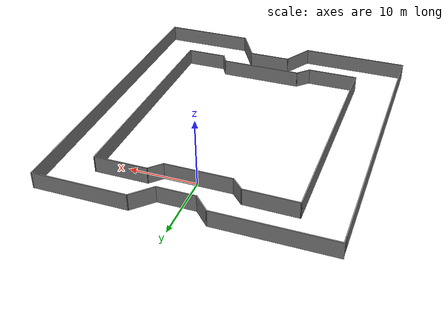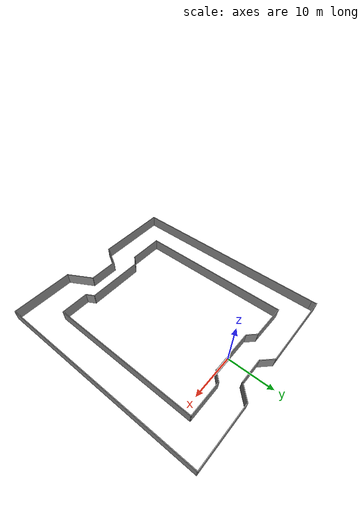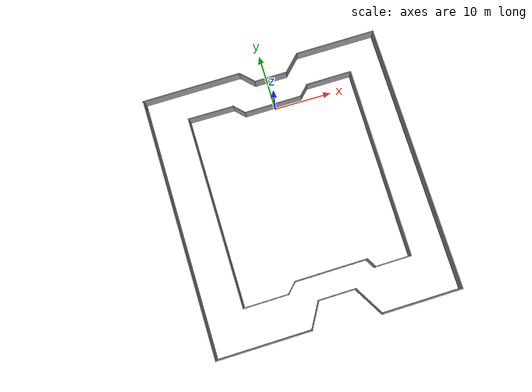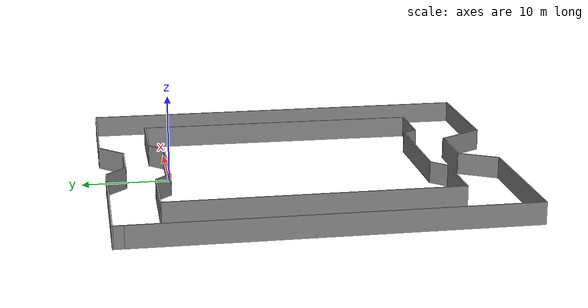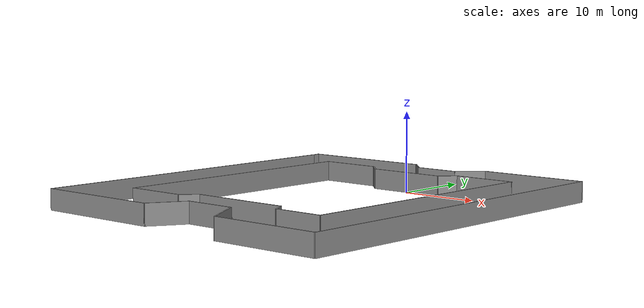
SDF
<?xml version='1.0'?>
<sdf version='1.7'>
  <model name='Track_basic'>
    <pose>-0.607311 -15.3829 0 0 -0 0</pose>
    <link name='Wall_10'>
      <collision name='Wall_10_Collision'>
        <geometry>
          <box>
            <size>8 0.15 2.5</size>
          </box>
        </geometry>
        <pose>0 0 1.25 0 -0 0</pose>
      </collision>
      <visual name='Wall_10_Visual'>
        <pose>0 0 1.25 0 -0 0</pose>
        <geometry>
          <box>
            <size>8 0.15 2.5</size>
          </box>
        </geometry>
        <material>
          <script>
            <uri>file://media/materials/scripts/gazebo.material</uri>
            <name>Gazebo/Grey</name>
          </script>
          <ambient>1 1 1 1</ambient>
        </material>
        <meta>
          <layer>0</layer>
        </meta>
      </visual>
      <pose>10.8193 17.3038 0 0 -0 0</pose>
    </link>
    <link name='Wall_108'>
      <collision name='Wall_108_Collision'>
        <geometry>
          <box>
            <size>44 0.15 2.5</size>
          </box>
        </geometry>
        <pose>0 0 1.25 0 -0 0</pose>
      </collision>
      <visual name='Wall_108_Visual'>
        <pose>0 0 1.25 0 -0 0</pose>
        <geometry>
          <box>
            <size>44 0.15 2.5</size>
          </box>
        </geometry>
        <material>
          <script>
            <uri>file://media/materials/scripts/gazebo.material</uri>
            <name>Gazebo/Grey</name>
          </script>
          <ambient>1 1 1 1</ambient>
        </material>
        <meta>
          <layer>0</layer>
        </meta>
      </visual>
      <pose>-20.6678 -0.385782 0 0 -0 -1.5708</pose>
    </link>
    <link name='Wall_109'>
      <collision name='Wall_109_Collision'>
        <geometry>
          <box>
            <size>16.25 0.15 2.5</size>
          </box>
        </geometry>
        <pose>0 0 1.25 0 -0 0</pose>
      </collision>
      <visual name='Wall_109_Visual'>
        <pose>0 0 1.25 0 -0 0</pose>
        <geometry>
          <box>
            <size>16.25 0.15 2.5</size>
          </box>
        </geometry>
        <material>
          <script>
            <uri>file://media/materials/scripts/gazebo.material</uri>
            <name>Gazebo/Grey</name>
          </script>
          <ambient>1 1 1 1</ambient>
        </material>
        <meta>
          <layer>0</layer>
        </meta>
      </visual>
      <pose>-12.6178 -22.3108 0 0 -0 0</pose>
    </link>
    <link name='Wall_110'>
      <collision name='Wall_110_Collision'>
        <geometry>
          <box>
            <size>5 0.15 2.5</size>
          </box>
        </geometry>
        <pose>0 0 1.25 0 -0 0</pose>
      </collision>
      <visual name='Wall_110_Visual'>
        <pose>0 0 1.25 0 -0 0</pose>
        <geometry>
          <box>
            <size>5 0.15 2.5</size>
          </box>
        </geometry>
        <material>
          <script>
            <uri>file://media/materials/scripts/gazebo.material</uri>
            <name>Gazebo/Grey</name>
          </script>
          <ambient>1 1 1 1</ambient>
        </material>
        <meta>
          <layer>0</layer>
        </meta>
      </visual>
      <pose>-3.3553 -20.2107 0 0 -0 1.0472</pose>
    </link>
    <link name='Wall_111'>
      <collision name='Wall_111_Collision'>
        <geometry>
          <box>
            <size>6.5 0.15 2.5</size>
          </box>
        </geometry>
        <pose>0 0 1.25 0 -0 0</pose>
      </collision>
      <visual name='Wall_111_Visual'>
        <pose>0 0 1.25 0 -0 0</pose>
        <geometry>
          <box>
            <size>6.5 0.15 2.5</size>
          </box>
        </geometry>
        <material>
          <script>
            <uri>file://media/materials/scripts/gazebo.material</uri>
            <name>Gazebo/Grey</name>
          </script>
          <ambient>1 1 1 1</ambient>
        </material>
        <meta>
          <layer>0</layer>
        </meta>
      </visual>
      <pose>1.03219 -18.1106 0 0 -0 0</pose>
    </link>
    <link name='Wall_112'>
      <collision name='Wall_112_Collision'>
        <geometry>
          <box>
            <size>6 0.15 2.5</size>
          </box>
        </geometry>
        <pose>0 0 1.25 0 -0 0</pose>
      </collision>
      <visual name='Wall_112_Visual'>
        <pose>0 0 1.25 0 -0 0</pose>
        <geometry>
          <box>
            <size>6 0.15 2.5</size>
          </box>
        </geometry>
        <material>
          <script>
            <uri>file://media/materials/scripts/gazebo.material</uri>
            <name>Gazebo/Grey</name>
          </script>
          <ambient>1 1 1 1</ambient>
        </material>
        <meta>
          <layer>0</layer>
        </meta>
      </visual>
      <pose>5.66969 -20.6437 0 0 -0 -1.0472</pose>
    </link>
    <link name='Wall_113'>
      <collision name='Wall_113_Collision'>
        <geometry>
          <box>
            <size>13.75 0.15 2.5</size>
          </box>
        </geometry>
        <pose>0 0 1.25 0 -0 0</pose>
      </collision>
      <visual name='Wall_113_Visual'>
        <pose>0 0 1.25 0 -0 0</pose>
        <geometry>
          <box>
            <size>13.75 0.15 2.5</size>
          </box>
        </geometry>
        <material>
          <script>
            <uri>file://media/materials/scripts/gazebo.material</uri>
            <name>Gazebo/Grey</name>
          </script>
          <ambient>1 1 1 1</ambient>
        </material>
        <meta>
          <layer>0</layer>
        </meta>
      </visual>
      <pose>13.9322 -23.1768 0 0 -0 0</pose>
    </link>
    <link name='Wall_114'>
      <collision name='Wall_114_Collision'>
        <geometry>
          <box>
            <size>46.5 0.15 2.5</size>
          </box>
        </geometry>
        <pose>0 0 1.25 0 -0 0</pose>
      </collision>
      <visual name='Wall_114_Visual'>
        <pose>0 0 1.25 0 -0 0</pose>
        <geometry>
          <box>
            <size>46.5 0.15 2.5</size>
          </box>
        </geometry>
        <material>
          <script>
            <uri>file://media/materials/scripts/gazebo.material</uri>
            <name>Gazebo/Grey</name>
          </script>
          <ambient>1 1 1 1</ambient>
        </material>
        <meta>
          <layer>0</layer>
        </meta>
      </visual>
      <pose>20.7322 -0.001807 0 0 -0 1.5708</pose>
    </link>
    <link name='Wall_115'>
      <collision name='Wall_115_Collision'>
        <geometry>
          <box>
            <size>14 0.15 2.5</size>
          </box>
        </geometry>
        <pose>0 0 1.25 0 -0 0</pose>
      </collision>
      <visual name='Wall_115_Visual'>
        <pose>0 0 1.25 0 -0 0</pose>
        <geometry>
          <box>
            <size>14 0.15 2.5</size>
          </box>
        </geometry>
        <material>
          <script>
            <uri>file://media/materials/scripts/gazebo.material</uri>
            <name>Gazebo/Grey</name>
          </script>
          <ambient>1 1 1 1</ambient>
        </material>
        <meta>
          <layer>0</layer>
        </meta>
      </visual>
      <pose>13.8072 23.1732 0 0 -0 3.14159</pose>
    </link>
    <link name='Wall_116'>
      <collision name='Wall_116_Collision'>
        <geometry>
          <box>
            <size>4 0.15 2.5</size>
          </box>
        </geometry>
        <pose>0 0 1.25 0 -0 0</pose>
      </collision>
      <visual name='Wall_116_Visual'>
        <pose>0 0 1.25 0 -0 0</pose>
        <geometry>
          <box>
            <size>4 0.15 2.5</size>
          </box>
        </geometry>
        <material>
          <script>
            <uri>file://media/materials/scripts/gazebo.material</uri>
            <name>Gazebo/Grey</name>
          </script>
          <ambient>1 1 1 1</ambient>
        </material>
        <meta>
          <layer>0</layer>
        </meta>
      </visual>
      <pose>5.52102 21.812 0 0 -0 -2.35619</pose>
    </link>
    <link name='Wall_117'>
      <collision name='Wall_117_Collision'>
        <geometry>
          <box>
            <size>5.75 0.15 2.5</size>
          </box>
        </geometry>
        <pose>0 0 1.25 0 -0 0</pose>
      </collision>
      <visual name='Wall_117_Visual'>
        <pose>0 0 1.25 0 -0 0</pose>
        <geometry>
          <box>
            <size>5.75 0.15 2.5</size>
          </box>
        </geometry>
        <material>
          <script>
            <uri>file://media/materials/scripts/gazebo.material</uri>
            <name>Gazebo/Grey</name>
          </script>
          <ambient>1 1 1 1</ambient>
        </material>
        <meta>
          <layer>0</layer>
        </meta>
      </visual>
      <pose>1.35983 20.4508 0 0 -0 3.14159</pose>
    </link>
    <link name='Wall_118'>
      <collision name='Wall_118_Collision'>
        <geometry>
          <box>
            <size>3.25 0.15 2.5</size>
          </box>
        </geometry>
        <pose>0 0 1.25 0 -0 0</pose>
      </collision>
      <visual name='Wall_118_Visual'>
        <pose>0 0 1.25 0 -0 0</pose>
        <geometry>
          <box>
            <size>3.25 0.15 2.5</size>
          </box>
        </geometry>
        <material>
          <script>
            <uri>file://media/materials/scripts/gazebo.material</uri>
            <name>Gazebo/Grey</name>
          </script>
          <ambient>1 1 1 1</ambient>
        </material>
        <meta>
          <layer>0</layer>
        </meta>
      </visual>
      <pose>-2.53618 21.5468 0 0 -0 2.35619</pose>
    </link>
    <link name='Wall_119'>
      <collision name='Wall_119_Collision'>
        <geometry>
          <box>
            <size>17.25 0.15 2.5</size>
          </box>
        </geometry>
        <pose>0 0 1.25 0 -0 0</pose>
      </collision>
      <visual name='Wall_119_Visual'>
        <pose>0 0 1.25 0 -0 0</pose>
        <geometry>
          <box>
            <size>17.25 0.15 2.5</size>
          </box>
        </geometry>
        <material>
          <script>
            <uri>file://media/materials/scripts/gazebo.material</uri>
            <name>Gazebo/Grey</name>
          </script>
          <ambient>1 1 1 1</ambient>
        </material>
        <meta>
          <layer>0</layer>
        </meta>
      </visual>
      <pose>-12.1822 22.6429 0 0 -0 3.14159</pose>
    </link>
    <link name='Wall_122'>
      <collision name='Wall_122_Collision'>
        <geometry>
          <box>
            <size>1.25 0.15 2.5</size>
          </box>
        </geometry>
        <pose>0 0 1.25 0 -0 0</pose>
      </collision>
      <visual name='Wall_122_Visual'>
        <pose>0 0 1.25 0 -0 0</pose>
        <geometry>
          <box>
            <size>1.25 0.15 2.5</size>
          </box>
        </geometry>
        <material>
          <script>
            <uri>file://media/materials/scripts/gazebo.material</uri>
            <name>Gazebo/Grey</name>
          </script>
          <ambient>1 1 1 1</ambient>
        </material>
        <meta>
          <layer>0</layer>
        </meta>
      </visual>
      <pose>-20.6678 22.0892 0 0 -0 1.5708</pose>
    </link>
    <link name='Wall_14'>
      <collision name='Wall_14_Collision'>
        <geometry>
          <box>
            <size>33.25 0.15 2.5</size>
          </box>
        </geometry>
        <pose>0 0 1.25 0 -0 0</pose>
      </collision>
      <visual name='Wall_14_Visual'>
        <pose>0 0 1.25 0 -0 0</pose>
        <geometry>
          <box>
            <size>33.25 0.15 2.5</size>
          </box>
        </geometry>
        <material>
          <script>
            <uri>file://media/materials/scripts/gazebo.material</uri>
            <name>Gazebo/Grey</name>
          </script>
          <ambient>1 1 1 1</ambient>
        </material>
        <meta>
          <layer>0</layer>
        </meta>
      </visual>
      <pose>-14.1597 0.845605 0 0 -0 -1.5708</pose>
    </link>
    <link name='Wall_16'>
      <collision name='Wall_16_Collision'>
        <geometry>
          <box>
            <size>7.75 0.15 2.5</size>
          </box>
        </geometry>
        <pose>0 0 1.25 0 -0 0</pose>
      </collision>
      <visual name='Wall_16_Visual'>
        <pose>0 0 1.25 0 -0 0</pose>
        <geometry>
          <box>
            <size>7.75 0.15 2.5</size>
          </box>
        </geometry>
        <material>
          <script>
            <uri>file://media/materials/scripts/gazebo.material</uri>
            <name>Gazebo/Grey</name>
          </script>
          <ambient>1 1 1 1</ambient>
        </material>
        <meta>
          <layer>0</layer>
        </meta>
      </visual>
      <pose>-10.3597 -15.7044 0 0 -0 0</pose>
    </link>
    <link name='Wall_17'>
      <collision name='Wall_17_Collision'>
        <geometry>
          <box>
            <size>2.5 0.15 2.5</size>
          </box>
        </geometry>
        <pose>0 0 1.25 0 -0 0</pose>
      </collision>
      <visual name='Wall_17_Visual'>
        <pose>0 0 1.25 0 -0 0</pose>
        <geometry>
          <box>
            <size>2.5 0.15 2.5</size>
          </box>
        </geometry>
        <material>
          <script>
            <uri>file://media/materials/scripts/gazebo.material</uri>
            <name>Gazebo/Grey</name>
          </script>
          <ambient>1 1 1 1</ambient>
        </material>
        <meta>
          <layer>0</layer>
        </meta>
      </visual>
      <pose>-5.72884 -14.8735 0 0 -0 0.785398</pose>
    </link>
    <link name='Wall_18'>
      <collision name='Wall_18_Collision'>
        <geometry>
          <box>
            <size>12.5 0.15 2.5</size>
          </box>
        </geometry>
        <pose>0 0 1.25 0 -0 0</pose>
      </collision>
      <visual name='Wall_18_Visual'>
        <pose>0 0 1.25 0 -0 0</pose>
        <geometry>
          <box>
            <size>12.5 0.15 2.5</size>
          </box>
        </geometry>
        <material>
          <script>
            <uri>file://media/materials/scripts/gazebo.material</uri>
            <name>Gazebo/Grey</name>
          </script>
          <ambient>1 1 1 1</ambient>
        </material>
        <meta>
          <layer>0</layer>
        </meta>
      </visual>
      <pose>1.27701 -14.0427 0 0 -0 0</pose>
    </link>
    <link name='Wall_19'>
      <collision name='Wall_19_Collision'>
        <geometry>
          <box>
            <size>2 0.15 2.5</size>
          </box>
        </geometry>
        <pose>0 0 1.25 0 -0 0</pose>
      </collision>
      <visual name='Wall_19_Visual'>
        <pose>0 0 1.25 0 -0 0</pose>
        <geometry>
          <box>
            <size>2 0.15 2.5</size>
          </box>
        </geometry>
        <material>
          <script>
            <uri>file://media/materials/scripts/gazebo.material</uri>
            <name>Gazebo/Grey</name>
          </script>
          <ambient>1 1 1 1</ambient>
        </material>
        <meta>
          <layer>0</layer>
        </meta>
      </visual>
      <pose>7.91451 -14.8438 0 0 -0 -1.0472</pose>
    </link>
    <link name='Wall_20'>
      <collision name='Wall_20_Collision'>
        <geometry>
          <box>
            <size>6.25 0.15 2.5</size>
          </box>
        </geometry>
        <pose>0 0 1.25 0 -0 0</pose>
      </collision>
      <visual name='Wall_20_Visual'>
        <pose>0 0 1.25 0 -0 0</pose>
        <geometry>
          <box>
            <size>6.25 0.15 2.5</size>
          </box>
        </geometry>
        <material>
          <script>
            <uri>file://media/materials/scripts/gazebo.material</uri>
            <name>Gazebo/Grey</name>
          </script>
          <ambient>1 1 1 1</ambient>
        </material>
        <meta>
          <layer>0</layer>
        </meta>
      </visual>
      <pose>11.427 -15.6448 0 0 -0 0</pose>
    </link>
    <link name='Wall_21'>
      <collision name='Wall_21_Collision'>
        <geometry>
          <box>
            <size>33.0998 0.15 2.5</size>
          </box>
        </geometry>
        <pose>0 0 1.25 0 -0 0</pose>
      </collision>
      <visual name='Wall_21_Visual'>
        <pose>0 0 1.25 0 -0 0</pose>
        <geometry>
          <box>
            <size>33.0998 0.15 2.5</size>
          </box>
        </geometry>
        <material>
          <script>
            <uri>file://media/materials/scripts/gazebo.material</uri>
            <name>Gazebo/Grey</name>
          </script>
          <ambient>1 1 1 1</ambient>
        </material>
        <meta>
          <layer>0</layer>
        </meta>
      </visual>
      <pose>14.6107 0.829496 0 0 -0 1.56268</pose>
    </link>
    <link name='Wall_6'>
      <collision name='Wall_6_Collision'>
        <geometry>
          <box>
            <size>8.03083 0.15 2.5</size>
          </box>
        </geometry>
        <pose>0 0 1.25 0 -0 0</pose>
      </collision>
      <visual name='Wall_6_Visual'>
        <pose>0 0 1.25 0 -0 0</pose>
        <geometry>
          <box>
            <size>8.03083 0.15 2.5</size>
          </box>
        </geometry>
        <material>
          <script>
            <uri>file://media/materials/scripts/gazebo.material</uri>
            <name>Gazebo/Grey</name>
          </script>
          <ambient>1 1 1 1</ambient>
        </material>
        <meta>
          <layer>0</layer>
        </meta>
      </visual>
      <pose>-10.2194 17.3497 0 0 -0 -0.011645</pose>
    </link>
    <link name='Wall_7'>
      <collision name='Wall_7_Collision'>
        <geometry>
          <box>
            <size>2.5 0.15 2.5</size>
          </box>
        </geometry>
        <pose>0 0 1.25 0 -0 0</pose>
      </collision>
      <visual name='Wall_7_Visual'>
        <pose>0 0 1.25 0 -0 0</pose>
        <geometry>
          <box>
            <size>2.5 0.15 2.5</size>
          </box>
        </geometry>
        <material>
          <script>
            <uri>file://media/materials/scripts/gazebo.material</uri>
            <name>Gazebo/Grey</name>
          </script>
          <ambient>1 1 1 1</ambient>
        </material>
        <meta>
          <layer>0</layer>
        </meta>
      </visual>
      <pose>-5.44825 16.473 0 0 -0 -0.785398</pose>
    </link>
    <link name='Wall_8'>
      <collision name='Wall_8_Collision'>
        <geometry>
          <box>
            <size>10 0.15 2.5</size>
          </box>
        </geometry>
        <pose>0 0 1.25 0 -0 0</pose>
      </collision>
      <visual name='Wall_8_Visual'>
        <pose>0 0 1.25 0 -0 0</pose>
        <geometry>
          <box>
            <size>10 0.15 2.5</size>
          </box>
        </geometry>
        <material>
          <script>
            <uri>file://media/materials/scripts/gazebo.material</uri>
            <name>Gazebo/Grey</name>
          </script>
          <ambient>1 1 1 1</ambient>
        </material>
        <meta>
          <layer>0</layer>
        </meta>
      </visual>
      <pose>0.307601 15.6421 0 0 -0 0</pose>
    </link>
    <link name='Wall_9'>
      <collision name='Wall_9_Collision'>
        <geometry>
          <box>
            <size>2.5 0.15 2.5</size>
          </box>
        </geometry>
        <pose>0 0 1.25 0 -0 0</pose>
      </collision>
      <visual name='Wall_9_Visual'>
        <pose>0 0 1.25 0 -0 0</pose>
        <geometry>
          <box>
            <size>2.5 0.15 2.5</size>
          </box>
        </geometry>
        <material>
          <script>
            <uri>file://media/materials/scripts/gazebo.material</uri>
            <name>Gazebo/Grey</name>
          </script>
          <ambient>1 1 1 1</ambient>
        </material>
        <meta>
          <layer>0</layer>
        </meta>
      </visual>
      <pose>6.06345 16.473 0 0 -0 0.785398</pose>
    </link>
    <static>1</static>
  </model>
</sdf>
